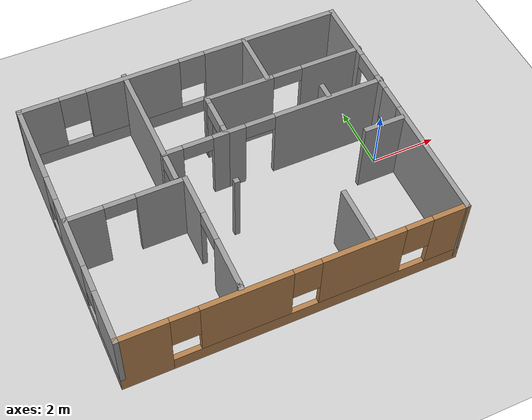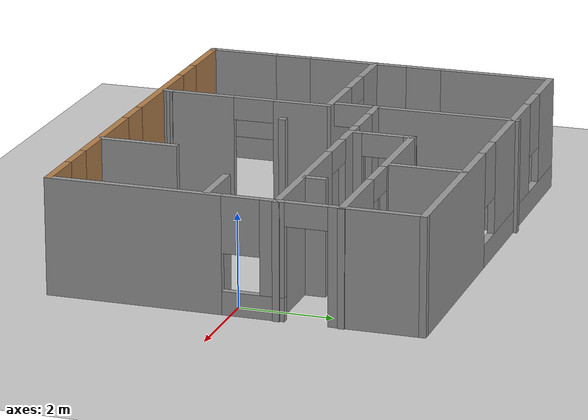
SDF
<?xml version="1.0" ?>
<sdf version="1.5">
  <world name="default">
    <!-- A global light source -->
    <include>
      <uri>model://sun</uri>
    </include>
    <!-- A ground plane -->
    <include>
      <uri>model://ground_plane</uri>
    </include>

    <include>
      <uri>model://basic_building2</uri>
      <pose> -4.5 0.1 0 0 0 0 </pose>
    </include>

    <physics name='default_physics' default='0' type='ode'>
      <gravity>0 0 -9.8066</gravity>
      <ode>
        <solver>
          <type>quick</type>
          <iters>10</iters>
          <sor>1.3</sor>
          <use_dynamic_moi_rescaling>0</use_dynamic_moi_rescaling>
        </solver>
        <constraints>
          <cfm>0</cfm>
          <erp>0.2</erp>
          <contact_max_correcting_vel>100</contact_max_correcting_vel>
          <contact_surface_layer>0.001</contact_surface_layer>
        </constraints>
      </ode>
      <max_step_size>0.004</max_step_size>
      <real_time_factor>1</real_time_factor>
      <real_time_update_rate>250</real_time_update_rate>
      <magnetic_field>6.0e-6 2.3e-5 -4.2e-5</magnetic_field>
    </physics>
  </world>
</sdf>

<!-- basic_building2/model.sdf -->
<sdf version='1.6'>
  <model name='basicBuilding2'>
    <pose frame=''>-2.70207 -1.92514 0 0 -0 0</pose>
    <link name='Wall_15'>
      <pose frame=''>2.51436 0.86563 0 0 -0 3.14159</pose>
      <visual name='Wall_15_Visual_0'>
        <pose frame=''>-0.781179 0 1.25 0 -0 0</pose>
        <geometry>
          <box>
            <size>3.43764 0.15 2.5</size>
          </box>
        </geometry>
        <material>
          <script>
            <uri>file://media/materials/scripts/gazebo.material</uri>
            <name>Gazebo/Grey</name>
          </script>
          <ambient>1 1 1 1</ambient>
        </material>
        <meta>
          <layer>0</layer>
        </meta>
      </visual>
      <collision name='Wall_15_Collision_0'>
        <geometry>
          <box>
            <size>3.43764 0.15 2.5</size>
          </box>
        </geometry>
        <pose frame=''>-0.781179 0 1.25 0 -0 0</pose>
      </collision>
      <visual name='Wall_15_Visual_1'>
        <pose frame=''>2.16882 0 1.25 0 -0 0</pose>
        <geometry>
          <box>
            <size>0.662358 0.15 2.5</size>
          </box>
        </geometry>
        <material>
          <script>
            <uri>file://media/materials/scripts/gazebo.material</uri>
            <name>Gazebo/Grey</name>
          </script>
          <ambient>1 1 1 1</ambient>
        </material>
        <meta>
          <layer>0</layer>
        </meta>
      </visual>
      <collision name='Wall_15_Collision_1'>
        <geometry>
          <box>
            <size>0.662358 0.15 2.5</size>
          </box>
        </geometry>
        <pose frame=''>2.16882 0 1.25 0 -0 0</pose>
      </collision>
      <visual name='Wall_15_Visual_2'>
        <pose frame=''>1.38764 0 2.25 0 -0 0</pose>
        <geometry>
          <box>
            <size>0.9 0.15 0.5</size>
          </box>
        </geometry>
        <material>
          <script>
            <uri>file://media/materials/scripts/gazebo.material</uri>
            <name>Gazebo/Grey</name>
          </script>
          <ambient>1 1 1 1</ambient>
        </material>
        <meta>
          <layer>0</layer>
        </meta>
      </visual>
      <collision name='Wall_15_Collision_2'>
        <geometry>
          <box>
            <size>0.9 0.15 0.5</size>
          </box>
        </geometry>
        <pose frame=''>1.38764 0 2.25 0 -0 0</pose>
      </collision>
    </link>
    <link name='Wall_17'>
      <pose frame=''>0.089363 1.54063 0 0 -0 1.5708</pose>
      <visual name='Wall_17_Visual_0'>
        <pose frame=''>-0.578397 0 1.25 0 -0 0</pose>
        <geometry>
          <box>
            <size>0.343206 0.15 2.5</size>
          </box>
        </geometry>
        <material>
          <script>
            <uri>file://media/materials/scripts/gazebo.material</uri>
            <name>Gazebo/Grey</name>
          </script>
          <ambient>1 1 1 1</ambient>
        </material>
        <meta>
          <layer>0</layer>
        </meta>
      </visual>
      <collision name='Wall_17_Collision_0'>
        <geometry>
          <box>
            <size>0.343206 0.15 2.5</size>
          </box>
        </geometry>
        <pose frame=''>-0.578397 0 1.25 0 -0 0</pose>
      </collision>
      <visual name='Wall_17_Visual_1'>
        <pose frame=''>0.621603 0 1.25 0 -0 0</pose>
        <geometry>
          <box>
            <size>0.256794 0.15 2.5</size>
          </box>
        </geometry>
        <material>
          <script>
            <uri>file://media/materials/scripts/gazebo.material</uri>
            <name>Gazebo/Grey</name>
          </script>
          <ambient>1 1 1 1</ambient>
        </material>
        <meta>
          <layer>0</layer>
        </meta>
      </visual>
      <collision name='Wall_17_Collision_1'>
        <geometry>
          <box>
            <size>0.256794 0.15 2.5</size>
          </box>
        </geometry>
        <pose frame=''>0.621603 0 1.25 0 -0 0</pose>
      </collision>
      <visual name='Wall_17_Visual_2'>
        <pose frame=''>0.043206 0 2.25 0 -0 0</pose>
        <geometry>
          <box>
            <size>0.9 0.15 0.5</size>
          </box>
        </geometry>
        <material>
          <script>
            <uri>file://media/materials/scripts/gazebo.material</uri>
            <name>Gazebo/Grey</name>
          </script>
          <ambient>1 1 1 1</ambient>
        </material>
        <meta>
          <layer>0</layer>
        </meta>
      </visual>
      <collision name='Wall_17_Collision_2'>
        <geometry>
          <box>
            <size>0.9 0.15 0.5</size>
          </box>
        </geometry>
        <pose frame=''>0.043206 0 2.25 0 -0 0</pose>
      </collision>
    </link>
    <link name='Wall_18'>
      <pose frame=''>2.51436 2.21563 0 0 -0 0</pose>
      <visual name='Wall_18_Visual_0'>
        <pose frame=''>-1.42462 0 1.25 0 -0 0</pose>
        <geometry>
          <box>
            <size>2.15076 0.15 2.5</size>
          </box>
        </geometry>
        <material>
          <script>
            <uri>file://media/materials/scripts/gazebo.material</uri>
            <name>Gazebo/Grey</name>
          </script>
          <ambient>1 1 1 1</ambient>
        </material>
        <meta>
          <layer>0</layer>
        </meta>
      </visual>
      <collision name='Wall_18_Collision_0'>
        <geometry>
          <box>
            <size>2.15076 0.15 2.5</size>
          </box>
        </geometry>
        <pose frame=''>-1.42462 0 1.25 0 -0 0</pose>
      </collision>
      <visual name='Wall_18_Visual_1'>
        <pose frame=''>1.52538 0 1.25 0 -0 0</pose>
        <geometry>
          <box>
            <size>1.94924 0.15 2.5</size>
          </box>
        </geometry>
        <material>
          <script>
            <uri>file://media/materials/scripts/gazebo.material</uri>
            <name>Gazebo/Grey</name>
          </script>
          <ambient>1 1 1 1</ambient>
        </material>
        <meta>
          <layer>0</layer>
        </meta>
      </visual>
      <collision name='Wall_18_Collision_1'>
        <geometry>
          <box>
            <size>1.94924 0.15 2.5</size>
          </box>
        </geometry>
        <pose frame=''>1.52538 0 1.25 0 -0 0</pose>
      </collision>
      <visual name='Wall_18_Visual_2'>
        <pose frame=''>0.100763 0 2.25 0 -0 0</pose>
        <geometry>
          <box>
            <size>0.9 0.15 0.5</size>
          </box>
        </geometry>
        <material>
          <script>
            <uri>file://media/materials/scripts/gazebo.material</uri>
            <name>Gazebo/Grey</name>
          </script>
          <ambient>1 1 1 1</ambient>
        </material>
        <meta>
          <layer>0</layer>
        </meta>
      </visual>
      <collision name='Wall_18_Collision_2'>
        <geometry>
          <box>
            <size>0.9 0.15 0.5</size>
          </box>
        </geometry>
        <pose frame=''>0.100763 0 2.25 0 -0 0</pose>
      </collision>
    </link>
    <link name='Wall_22'>
      <collision name='Wall_22_Collision'>
        <geometry>
          <box>
            <size>1.75 0.15 2.5</size>
          </box>
        </geometry>
        <pose frame=''>0 0 1.25 0 -0 0</pose>
      </collision>
      <visual name='Wall_22_Visual'>
        <pose frame=''>0 0 1.25 0 -0 0</pose>
        <geometry>
          <box>
            <size>1.75 0.15 2.5</size>
          </box>
        </geometry>
        <material>
          <script>
            <uri>file://media/materials/scripts/gazebo.material</uri>
            <name>Gazebo/Grey</name>
          </script>
          <ambient>1 1 1 1</ambient>
        </material>
        <meta>
          <layer>0</layer>
        </meta>
      </visual>
      <pose frame=''>1.98636 3.06054 0 0 -0 1.5708</pose>
    </link>
    <link name='Wall_24'>
      <collision name='Wall_24_Collision'>
        <geometry>
          <box>
            <size>0.5 0.15 2.5</size>
          </box>
        </geometry>
        <pose frame=''>0 0 1.25 0 -0 0</pose>
      </collision>
      <visual name='Wall_24_Visual'>
        <pose frame=''>0 0 1.25 0 -0 0</pose>
        <geometry>
          <box>
            <size>0.5 0.15 2.5</size>
          </box>
        </geometry>
        <material>
          <script>
            <uri>file://media/materials/scripts/gazebo.material</uri>
            <name>Gazebo/Grey</name>
          </script>
          <ambient>1 1 1 1</ambient>
        </material>
        <meta>
          <layer>0</layer>
        </meta>
      </visual>
      <pose frame=''>3.29899 1.12725 0 0 -0 -1.5708</pose>
    </link>
    <link name='Wall_28'>
      <pose frame=''>-0.835637 0.86563 0 0 -0 3.14159</pose>
      <visual name='Wall_28_Visual_0'>
        <pose frame=''>-0.761234 0 1.25 0 -0 0</pose>
        <geometry>
          <box>
            <size>0.477531 0.15 2.5</size>
          </box>
        </geometry>
        <material>
          <script>
            <uri>file://media/materials/scripts/gazebo.material</uri>
            <name>Gazebo/Grey</name>
          </script>
          <ambient>1 1 1 1</ambient>
        </material>
        <meta>
          <layer>0</layer>
        </meta>
      </visual>
      <collision name='Wall_28_Collision_0'>
        <geometry>
          <box>
            <size>0.477531 0.15 2.5</size>
          </box>
        </geometry>
        <pose frame=''>-0.761234 0 1.25 0 -0 0</pose>
      </collision>
      <visual name='Wall_28_Visual_1'>
        <pose frame=''>0.688766 0 1.25 0 -0 0</pose>
        <geometry>
          <box>
            <size>0.622469 0.15 2.5</size>
          </box>
        </geometry>
        <material>
          <script>
            <uri>file://media/materials/scripts/gazebo.material</uri>
            <name>Gazebo/Grey</name>
          </script>
          <ambient>1 1 1 1</ambient>
        </material>
        <meta>
          <layer>0</layer>
        </meta>
      </visual>
      <collision name='Wall_28_Collision_1'>
        <geometry>
          <box>
            <size>0.622469 0.15 2.5</size>
          </box>
        </geometry>
        <pose frame=''>0.688766 0 1.25 0 -0 0</pose>
      </collision>
      <visual name='Wall_28_Visual_2'>
        <pose frame=''>-0.072469 0 2.25 0 -0 0</pose>
        <geometry>
          <box>
            <size>0.9 0.15 0.5</size>
          </box>
        </geometry>
        <material>
          <script>
            <uri>file://media/materials/scripts/gazebo.material</uri>
            <name>Gazebo/Grey</name>
          </script>
          <ambient>1 1 1 1</ambient>
        </material>
        <meta>
          <layer>0</layer>
        </meta>
      </visual>
      <collision name='Wall_28_Collision_2'>
        <geometry>
          <box>
            <size>0.9 0.15 0.5</size>
          </box>
        </geometry>
        <pose frame=''>-0.072469 0 2.25 0 -0 0</pose>
      </collision>
    </link>
    <link name='Wall_30'>
      <collision name='Wall_30_Collision'>
        <geometry>
          <box>
            <size>3.25 0.15 2.5</size>
          </box>
        </geometry>
        <pose frame=''>0 0 1.25 0 -0 0</pose>
      </collision>
      <visual name='Wall_30_Visual'>
        <pose frame=''>0 0 1.25 0 -0 0</pose>
        <geometry>
          <box>
            <size>3.25 0.15 2.5</size>
          </box>
        </geometry>
        <material>
          <script>
            <uri>file://media/materials/scripts/gazebo.material</uri>
            <name>Gazebo/Grey</name>
          </script>
          <ambient>1 1 1 1</ambient>
        </material>
        <meta>
          <layer>0</layer>
        </meta>
      </visual>
      <pose frame=''>-1.76064 2.41563 0 0 -0 1.5708</pose>
    </link>
    <link name='Wall_32'>
      <pose frame=''>-3.22504 -0.143869 0 0 -0 -0.001293</pose>
      <visual name='Wall_32_Visual_0'>
        <pose frame=''>-1.20035 0 1.25 0 -0 0</pose>
        <geometry>
          <box>
            <size>1.11235 0.15 2.5</size>
          </box>
        </geometry>
        <material>
          <script>
            <uri>file://media/materials/scripts/gazebo.material</uri>
            <name>Gazebo/Grey</name>
          </script>
          <ambient>1 1 1 1</ambient>
        </material>
        <meta>
          <layer>0</layer>
        </meta>
      </visual>
      <collision name='Wall_32_Collision_0'>
        <geometry>
          <box>
            <size>1.11235 0.15 2.5</size>
          </box>
        </geometry>
        <pose frame=''>-1.20035 0 1.25 0 -0 0</pose>
      </collision>
      <visual name='Wall_32_Visual_1'>
        <pose frame=''>1.00618 0 1.25 0 -0 0</pose>
        <geometry>
          <box>
            <size>1.50069 0.15 2.5</size>
          </box>
        </geometry>
        <material>
          <script>
            <uri>file://media/materials/scripts/gazebo.material</uri>
            <name>Gazebo/Grey</name>
          </script>
          <ambient>1 1 1 1</ambient>
        </material>
        <meta>
          <layer>0</layer>
        </meta>
      </visual>
      <collision name='Wall_32_Collision_1'>
        <geometry>
          <box>
            <size>1.50069 0.15 2.5</size>
          </box>
        </geometry>
        <pose frame=''>1.00618 0 1.25 0 -0 0</pose>
      </collision>
      <visual name='Wall_32_Visual_2'>
        <pose frame=''>-0.19417 0 2.25 0 -0 0</pose>
        <geometry>
          <box>
            <size>0.9 0.15 0.5</size>
          </box>
        </geometry>
        <material>
          <script>
            <uri>file://media/materials/scripts/gazebo.material</uri>
            <name>Gazebo/Grey</name>
          </script>
          <ambient>1 1 1 1</ambient>
        </material>
        <meta>
          <layer>0</layer>
        </meta>
      </visual>
      <collision name='Wall_32_Collision_2'>
        <geometry>
          <box>
            <size>0.9 0.15 0.5</size>
          </box>
        </geometry>
        <pose frame=''>-0.19417 0 2.25 0 -0 0</pose>
      </collision>
    </link>
    <link name='Wall_33'>
      <pose frame=''>-1.54352 -1.95039 0 0 -0 -1.5708</pose>
      <visual name='Wall_33_Visual_0'>
        <pose frame=''>-1.22774 0 1.25 0 -0 0</pose>
        <geometry>
          <box>
            <size>1.29453 0.15 2.5</size>
          </box>
        </geometry>
        <material>
          <script>
            <uri>file://media/materials/scripts/gazebo.material</uri>
            <name>Gazebo/Grey</name>
          </script>
          <ambient>1 1 1 1</ambient>
        </material>
        <meta>
          <layer>0</layer>
        </meta>
      </visual>
      <collision name='Wall_33_Collision_0'>
        <geometry>
          <box>
            <size>1.29453 0.15 2.5</size>
          </box>
        </geometry>
        <pose frame=''>-1.22774 0 1.25 0 -0 0</pose>
      </collision>
      <visual name='Wall_33_Visual_1'>
        <pose frame=''>1.09726 0 1.25 0 -0 0</pose>
        <geometry>
          <box>
            <size>1.55547 0.15 2.5</size>
          </box>
        </geometry>
        <material>
          <script>
            <uri>file://media/materials/scripts/gazebo.material</uri>
            <name>Gazebo/Grey</name>
          </script>
          <ambient>1 1 1 1</ambient>
        </material>
        <meta>
          <layer>0</layer>
        </meta>
      </visual>
      <collision name='Wall_33_Collision_1'>
        <geometry>
          <box>
            <size>1.55547 0.15 2.5</size>
          </box>
        </geometry>
        <pose frame=''>1.09726 0 1.25 0 -0 0</pose>
      </collision>
      <visual name='Wall_33_Visual_2'>
        <pose frame=''>-0.130473 0 2.25 0 -0 0</pose>
        <geometry>
          <box>
            <size>0.9 0.15 0.5</size>
          </box>
        </geometry>
        <material>
          <script>
            <uri>file://media/materials/scripts/gazebo.material</uri>
            <name>Gazebo/Grey</name>
          </script>
          <ambient>1 1 1 1</ambient>
        </material>
        <meta>
          <layer>0</layer>
        </meta>
      </visual>
      <collision name='Wall_33_Collision_2'>
        <geometry>
          <box>
            <size>0.9 0.15 0.5</size>
          </box>
        </geometry>
        <pose frame=''>-0.130473 0 2.25 0 -0 0</pose>
      </collision>
    </link>
    <link name='Wall_34'>
      <collision name='Wall_34_Collision'>
        <geometry>
          <box>
            <size>0.246537 0.15 2.5</size>
          </box>
        </geometry>
        <pose frame=''>0 0 1.25 0 -0 0</pose>
      </collision>
      <visual name='Wall_34_Visual'>
        <pose frame=''>0 0 1.25 0 -0 0</pose>
        <geometry>
          <box>
            <size>0.246537 0.15 2.5</size>
          </box>
        </geometry>
        <material>
          <script>
            <uri>file://media/materials/scripts/gazebo.material</uri>
            <name>Gazebo/Grey</name>
          </script>
          <ambient>1 1 1 1</ambient>
        </material>
        <meta>
          <layer>0</layer>
        </meta>
      </visual>
      <pose frame=''>-1.55004 -3.79387 0 0 -0 -1.70632</pose>
    </link>
    <link name='Wall_37'>
      <pose frame=''>-1.76064 0.44063 0 0 -0 -1.5708</pose>
      <visual name='Wall_37_Visual_0'>
        <pose frame=''>-0.4158 0 1.25 0 -0 0</pose>
        <geometry>
          <box>
            <size>0.168399 0.15 2.5</size>
          </box>
        </geometry>
        <material>
          <script>
            <uri>file://media/materials/scripts/gazebo.material</uri>
            <name>Gazebo/Grey</name>
          </script>
          <ambient>1 1 1 1</ambient>
        </material>
        <meta>
          <layer>0</layer>
        </meta>
      </visual>
      <collision name='Wall_37_Collision_0'>
        <geometry>
          <box>
            <size>0.168399 0.15 2.5</size>
          </box>
        </geometry>
        <pose frame=''>-0.4158 0 1.25 0 -0 0</pose>
      </collision>
      <visual name='Wall_37_Visual_1'>
        <pose frame=''>0.0842 0 2.25 0 -0 0</pose>
        <geometry>
          <box>
            <size>0.831601 0.15 0.5</size>
          </box>
        </geometry>
        <material>
          <script>
            <uri>file://media/materials/scripts/gazebo.material</uri>
            <name>Gazebo/Grey</name>
          </script>
          <ambient>1 1 1 1</ambient>
        </material>
        <meta>
          <layer>0</layer>
        </meta>
      </visual>
      <collision name='Wall_37_Collision_1'>
        <geometry>
          <box>
            <size>0.831601 0.15 0.5</size>
          </box>
        </geometry>
        <pose frame=''>0.0842 0 2.25 0 -0 0</pose>
      </collision>
    </link>
    <link name='Wall_4'>
      <pose frame=''>-0.014363 -3.96563 0 0 -0 0</pose>
      <visual name='Wall_4_Visual_0'>
        <pose frame=''>-4.26295 0 1.25 0 -0 0</pose>
        <geometry>
          <box>
            <size>1.47409 0.15 2.5</size>
          </box>
        </geometry>
        <material>
          <script>
            <uri>file://media/materials/scripts/gazebo.material</uri>
            <name>Gazebo/Wood</name>
          </script>
          <ambient>0.760784 0.662745 0.627451 1</ambient>
        </material>
        <meta>
          <layer>0</layer>
        </meta>
      </visual>
      <collision name='Wall_4_Collision_0'>
        <geometry>
          <box>
            <size>1.47409 0.15 2.5</size>
          </box>
        </geometry>
        <pose frame=''>-4.26295 0 1.25 0 -0 0</pose>
      </collision>
      <visual name='Wall_4_Visual_1'>
        <pose frame=''>0.737045 0 0.25 0 -0 0</pose>
        <geometry>
          <box>
            <size>8.52591 0.15 0.5</size>
          </box>
        </geometry>
        <material>
          <script>
            <uri>file://media/materials/scripts/gazebo.material</uri>
            <name>Gazebo/Wood</name>
          </script>
          <ambient>0.760784 0.662745 0.627451 1</ambient>
        </material>
        <meta>
          <layer>0</layer>
        </meta>
      </visual>
      <collision name='Wall_4_Collision_1'>
        <geometry>
          <box>
            <size>8.52591 0.15 0.5</size>
          </box>
        </geometry>
        <pose frame=''>0.737045 0 0.25 0 -0 0</pose>
      </collision>
      <visual name='Wall_4_Visual_2'>
        <pose frame=''>-1.43689 0 1.5 0 -0 0</pose>
        <geometry>
          <box>
            <size>2.57804 0.15 2</size>
          </box>
        </geometry>
        <material>
          <script>
            <uri>file://media/materials/scripts/gazebo.material</uri>
            <name>Gazebo/Wood</name>
          </script>
          <ambient>0.760784 0.662745 0.627451 1</ambient>
        </material>
        <meta>
          <layer>0</layer>
        </meta>
      </visual>
      <collision name='Wall_4_Collision_2'>
        <geometry>
          <box>
            <size>2.57804 0.15 2</size>
          </box>
        </geometry>
        <pose frame=''>-1.43689 0 1.5 0 -0 0</pose>
      </collision>
      <visual name='Wall_4_Visual_3'>
        <pose frame=''>1.87035 0 1.5 0 -0 0</pose>
        <geometry>
          <box>
            <size>2.43645 0.15 2</size>
          </box>
        </geometry>
        <material>
          <script>
            <uri>file://media/materials/scripts/gazebo.material</uri>
            <name>Gazebo/Wood</name>
          </script>
          <ambient>0.760784 0.662745 0.627451 1</ambient>
        </material>
        <meta>
          <layer>0</layer>
        </meta>
      </visual>
      <collision name='Wall_4_Collision_3'>
        <geometry>
          <box>
            <size>2.43645 0.15 2</size>
          </box>
        </geometry>
        <pose frame=''>1.87035 0 1.5 0 -0 0</pose>
      </collision>
      <visual name='Wall_4_Visual_4'>
        <pose frame=''>4.44429 0 1.5 0 -0 0</pose>
        <geometry>
          <box>
            <size>1.11142 0.15 2</size>
          </box>
        </geometry>
        <material>
          <script>
            <uri>file://media/materials/scripts/gazebo.material</uri>
            <name>Gazebo/Wood</name>
          </script>
          <ambient>0.760784 0.662745 0.627451 1</ambient>
        </material>
        <meta>
          <layer>0</layer>
        </meta>
      </visual>
      <collision name='Wall_4_Collision_4'>
        <geometry>
          <box>
            <size>1.11142 0.15 2</size>
          </box>
        </geometry>
        <pose frame=''>4.44429 0 1.5 0 -0 0</pose>
      </collision>
      <visual name='Wall_4_Visual_5'>
        <pose frame=''>-3.12591 0 1.9 0 -0 0</pose>
        <geometry>
          <box>
            <size>0.8 0.15 1.2</size>
          </box>
        </geometry>
        <material>
          <script>
            <uri>file://media/materials/scripts/gazebo.material</uri>
            <name>Gazebo/Wood</name>
          </script>
          <ambient>0.760784 0.662745 0.627451 1</ambient>
        </material>
        <meta>
          <layer>0</layer>
        </meta>
      </visual>
      <collision name='Wall_4_Collision_5'>
        <geometry>
          <box>
            <size>0.8 0.15 1.2</size>
          </box>
        </geometry>
        <pose frame=''>-3.12591 0 1.9 0 -0 0</pose>
      </collision>
      <visual name='Wall_4_Visual_6'>
        <pose frame=''>0.252132 0 1.9 0 -0 0</pose>
        <geometry>
          <box>
            <size>0.8 0.15 1.2</size>
          </box>
        </geometry>
        <material>
          <script>
            <uri>file://media/materials/scripts/gazebo.material</uri>
            <name>Gazebo/Wood</name>
          </script>
          <ambient>0.760784 0.662745 0.627451 1</ambient>
        </material>
        <meta>
          <layer>0</layer>
        </meta>
      </visual>
      <collision name='Wall_4_Collision_6'>
        <geometry>
          <box>
            <size>0.8 0.15 1.2</size>
          </box>
        </geometry>
        <pose frame=''>0.252132 0 1.9 0 -0 0</pose>
      </collision>
      <visual name='Wall_4_Visual_7'>
        <pose frame=''>3.48858 0 1.9 0 -0 0</pose>
        <geometry>
          <box>
            <size>0.8 0.15 1.2</size>
          </box>
        </geometry>
        <material>
          <script>
            <uri>file://media/materials/scripts/gazebo.material</uri>
            <name>Gazebo/Wood</name>
          </script>
          <ambient>0.760784 0.662745 0.627451 1</ambient>
        </material>
        <meta>
          <layer>0</layer>
        </meta>
      </visual>
      <collision name='Wall_4_Collision_7'>
        <geometry>
          <box>
            <size>0.8 0.15 1.2</size>
          </box>
        </geometry>
        <pose frame=''>3.48858 0 1.9 0 -0 0</pose>
      </collision>
    </link>
    <link name='Wall_42'>
      <collision name='Wall_42_Collision'>
        <geometry>
          <box>
            <size>1.75 0.15 2.5</size>
          </box>
        </geometry>
        <pose frame=''>0 0 1.25 0 -0 0</pose>
      </collision>
      <visual name='Wall_42_Visual'>
        <pose frame=''>0 0 1.25 0 -0 0</pose>
        <geometry>
          <box>
            <size>1.75 0.15 2.5</size>
          </box>
        </geometry>
        <material>
          <script>
            <uri>file://media/materials/scripts/gazebo.material</uri>
            <name>Gazebo/Grey</name>
          </script>
          <ambient>1 1 1 1</ambient>
        </material>
        <meta>
          <layer>0</layer>
        </meta>
      </visual>
      <pose frame=''>2.13918 -3.10338 0 0 -0 1.5708</pose>
    </link>
    <link name='Wall_44'>
      <collision name='Wall_44_Collision'>
        <geometry>
          <box>
            <size>1.25 0.15 2.5</size>
          </box>
        </geometry>
        <pose frame=''>0 0 1.25 0 -0 0</pose>
      </collision>
      <visual name='Wall_44_Visual'>
        <pose frame=''>0 0 1.25 0 -0 0</pose>
        <geometry>
          <box>
            <size>1.25 0.15 2.5</size>
          </box>
        </geometry>
        <material>
          <script>
            <uri>file://media/materials/scripts/gazebo.material</uri>
            <name>Gazebo/Grey</name>
          </script>
          <ambient>1 1 1 1</ambient>
        </material>
        <meta>
          <layer>0</layer>
        </meta>
      </visual>
      <pose frame=''>4.25925 -0.626478 0 0 -0 3.14159</pose>
    </link>
    <link name='Wall_48'>
      <collision name='Wall_48_Collision'>
        <geometry>
          <box>
            <size>0.16 0.15 2.5</size>
          </box>
        </geometry>
        <pose frame=''>0 0 1.25 0 -0 0</pose>
      </collision>
      <visual name='Wall_48_Visual'>
        <pose frame=''>0 0 1.25 0 -0 0</pose>
        <geometry>
          <box>
            <size>0.16 0.15 2.5</size>
          </box>
        </geometry>
        <material>
          <script>
            <uri>file://media/materials/scripts/gazebo.material</uri>
            <name>Gazebo/Grey</name>
          </script>
          <ambient>1 1 1 1</ambient>
        </material>
        <meta>
          <layer>0</layer>
        </meta>
      </visual>
      <pose frame=''>-0.317448 -0.763685 0 0 -0 0</pose>
    </link>
    <link name='Wall_5'>
      <pose frame=''>4.91064 -0.04063 0 0 -0 1.5708</pose>
      <visual name='Wall_5_Visual_0'>
        <pose frame=''>-2.11871 0 1.25 0 -0 0</pose>
        <geometry>
          <box>
            <size>3.76258 0.15 2.5</size>
          </box>
        </geometry>
        <material>
          <script>
            <uri>file://media/materials/scripts/gazebo.material</uri>
            <name>Gazebo/Grey</name>
          </script>
          <ambient>1 1 1 1</ambient>
        </material>
        <meta>
          <layer>0</layer>
        </meta>
      </visual>
      <collision name='Wall_5_Collision_0'>
        <geometry>
          <box>
            <size>3.76258 0.15 2.5</size>
          </box>
        </geometry>
        <pose frame=''>-2.11871 0 1.25 0 -0 0</pose>
      </collision>
      <visual name='Wall_5_Visual_1'>
        <pose frame=''>2.98925 0 1.25 0 -0 0</pose>
        <geometry>
          <box>
            <size>2.0215 0.15 2.5</size>
          </box>
        </geometry>
        <material>
          <script>
            <uri>file://media/materials/scripts/gazebo.material</uri>
            <name>Gazebo/Grey</name>
          </script>
          <ambient>1 1 1 1</ambient>
        </material>
        <meta>
          <layer>0</layer>
        </meta>
      </visual>
      <collision name='Wall_5_Collision_1'>
        <geometry>
          <box>
            <size>2.0215 0.15 2.5</size>
          </box>
        </geometry>
        <pose frame=''>2.98925 0 1.25 0 -0 0</pose>
      </collision>
      <visual name='Wall_5_Visual_2'>
        <pose frame=''>0.420539 0 0.25 0 -0 0</pose>
        <geometry>
          <box>
            <size>1.31592 0.15 0.5</size>
          </box>
        </geometry>
        <material>
          <script>
            <uri>file://media/materials/scripts/gazebo.material</uri>
            <name>Gazebo/Grey</name>
          </script>
          <ambient>1 1 1 1</ambient>
        </material>
        <meta>
          <layer>0</layer>
        </meta>
      </visual>
      <collision name='Wall_5_Collision_2'>
        <geometry>
          <box>
            <size>1.31592 0.15 0.5</size>
          </box>
        </geometry>
        <pose frame=''>0.420539 0 0.25 0 -0 0</pose>
      </collision>
      <visual name='Wall_5_Visual_3'>
        <pose frame=''>0.820539 0 1.5 0 -0 0</pose>
        <geometry>
          <box>
            <size>0.515919 0.15 2</size>
          </box>
        </geometry>
        <material>
          <script>
            <uri>file://media/materials/scripts/gazebo.material</uri>
            <name>Gazebo/Grey</name>
          </script>
          <ambient>1 1 1 1</ambient>
        </material>
        <meta>
          <layer>0</layer>
        </meta>
      </visual>
      <collision name='Wall_5_Collision_3'>
        <geometry>
          <box>
            <size>0.515919 0.15 2</size>
          </box>
        </geometry>
        <pose frame=''>0.820539 0 1.5 0 -0 0</pose>
      </collision>
      <visual name='Wall_5_Visual_4'>
        <pose frame=''>0.16258 0 1.9 0 -0 0</pose>
        <geometry>
          <box>
            <size>0.8 0.15 1.2</size>
          </box>
        </geometry>
        <material>
          <script>
            <uri>file://media/materials/scripts/gazebo.material</uri>
            <name>Gazebo/Grey</name>
          </script>
          <ambient>1 1 1 1</ambient>
        </material>
        <meta>
          <layer>0</layer>
        </meta>
      </visual>
      <collision name='Wall_5_Collision_4'>
        <geometry>
          <box>
            <size>0.8 0.15 1.2</size>
          </box>
        </geometry>
        <pose frame=''>0.16258 0 1.9 0 -0 0</pose>
      </collision>
      <visual name='Wall_5_Visual_5'>
        <pose frame=''>1.5285 0 2.25 0 -0 0</pose>
        <geometry>
          <box>
            <size>0.9 0.15 0.5</size>
          </box>
        </geometry>
        <material>
          <script>
            <uri>file://media/materials/scripts/gazebo.material</uri>
            <name>Gazebo/Grey</name>
          </script>
          <ambient>1 1 1 1</ambient>
        </material>
        <meta>
          <layer>0</layer>
        </meta>
      </visual>
      <collision name='Wall_5_Collision_5'>
        <geometry>
          <box>
            <size>0.9 0.15 0.5</size>
          </box>
        </geometry>
        <pose frame=''>1.5285 0 2.25 0 -0 0</pose>
      </collision>
    </link>
    <link name='Wall_6'>
      <pose frame=''>-0.014363 3.88437 0 0 -0 3.14159</pose>
      <visual name='Wall_6_Visual_0'>
        <pose frame=''>-2.85641 0 1.25 0 -0 0</pose>
        <geometry>
          <box>
            <size>4.28719 0.15 2.5</size>
          </box>
        </geometry>
        <material>
          <script>
            <uri>file://media/materials/scripts/gazebo.material</uri>
            <name>Gazebo/Grey</name>
          </script>
          <ambient>1 1 1 1</ambient>
        </material>
        <meta>
          <layer>0</layer>
        </meta>
      </visual>
      <collision name='Wall_6_Collision_0'>
        <geometry>
          <box>
            <size>4.28719 0.15 2.5</size>
          </box>
        </geometry>
        <pose frame=''>-2.85641 0 1.25 0 -0 0</pose>
      </collision>
      <visual name='Wall_6_Visual_1'>
        <pose frame=''>2.14359 0 0.25 0 -0 0</pose>
        <geometry>
          <box>
            <size>5.71281 0.15 0.5</size>
          </box>
        </geometry>
        <material>
          <script>
            <uri>file://media/materials/scripts/gazebo.material</uri>
            <name>Gazebo/Grey</name>
          </script>
          <ambient>1 1 1 1</ambient>
        </material>
        <meta>
          <layer>0</layer>
        </meta>
      </visual>
      <collision name='Wall_6_Collision_1'>
        <geometry>
          <box>
            <size>5.71281 0.15 0.5</size>
          </box>
        </geometry>
        <pose frame=''>2.14359 0 0.25 0 -0 0</pose>
      </collision>
      <visual name='Wall_6_Visual_2'>
        <pose frame=''>1.5178 0 1.5 0 -0 0</pose>
        <geometry>
          <box>
            <size>2.86123 0.15 2</size>
          </box>
        </geometry>
        <material>
          <script>
            <uri>file://media/materials/scripts/gazebo.material</uri>
            <name>Gazebo/Grey</name>
          </script>
          <ambient>1 1 1 1</ambient>
        </material>
        <meta>
          <layer>0</layer>
        </meta>
      </visual>
      <collision name='Wall_6_Collision_2'>
        <geometry>
          <box>
            <size>2.86123 0.15 2</size>
          </box>
        </geometry>
        <pose frame=''>1.5178 0 1.5 0 -0 0</pose>
      </collision>
      <visual name='Wall_6_Visual_3'>
        <pose frame=''>4.37421 0 1.5 0 -0 0</pose>
        <geometry>
          <box>
            <size>1.25158 0.15 2</size>
          </box>
        </geometry>
        <material>
          <script>
            <uri>file://media/materials/scripts/gazebo.material</uri>
            <name>Gazebo/Grey</name>
          </script>
          <ambient>1 1 1 1</ambient>
        </material>
        <meta>
          <layer>0</layer>
        </meta>
      </visual>
      <collision name='Wall_6_Collision_3'>
        <geometry>
          <box>
            <size>1.25158 0.15 2</size>
          </box>
        </geometry>
        <pose frame=''>4.37421 0 1.5 0 -0 0</pose>
      </collision>
      <visual name='Wall_6_Visual_4'>
        <pose frame=''>-0.312815 0 1.9 0 -0 0</pose>
        <geometry>
          <box>
            <size>0.8 0.15 1.2</size>
          </box>
        </geometry>
        <material>
          <script>
            <uri>file://media/materials/scripts/gazebo.material</uri>
            <name>Gazebo/Grey</name>
          </script>
          <ambient>1 1 1 1</ambient>
        </material>
        <meta>
          <layer>0</layer>
        </meta>
      </visual>
      <collision name='Wall_6_Collision_4'>
        <geometry>
          <box>
            <size>0.8 0.15 1.2</size>
          </box>
        </geometry>
        <pose frame=''>-0.312815 0 1.9 0 -0 0</pose>
      </collision>
      <visual name='Wall_6_Visual_5'>
        <pose frame=''>3.34842 0 1.9 0 -0 0</pose>
        <geometry>
          <box>
            <size>0.8 0.15 1.2</size>
          </box>
        </geometry>
        <material>
          <script>
            <uri>file://media/materials/scripts/gazebo.material</uri>
            <name>Gazebo/Grey</name>
          </script>
          <ambient>1 1 1 1</ambient>
        </material>
        <meta>
          <layer>0</layer>
        </meta>
      </visual>
      <collision name='Wall_6_Collision_5'>
        <geometry>
          <box>
            <size>0.8 0.15 1.2</size>
          </box>
        </geometry>
        <pose frame=''>3.34842 0 1.9 0 -0 0</pose>
      </collision>
    </link>
    <link name='Wall_7'>
      <pose frame=''>-4.93936 -0.04063 0 0 -0 -1.5708</pose>
      <visual name='Wall_7_Visual_0'>
        <pose frame=''>-2.7263 0 1.25 0 -0 0</pose>
        <geometry>
          <box>
            <size>2.5474 0.15 2.5</size>
          </box>
        </geometry>
        <material>
          <script>
            <uri>file://media/materials/scripts/gazebo.material</uri>
            <name>Gazebo/Grey</name>
          </script>
          <ambient>1 1 1 1</ambient>
        </material>
        <meta>
          <layer>0</layer>
        </meta>
      </visual>
      <collision name='Wall_7_Collision_0'>
        <geometry>
          <box>
            <size>2.5474 0.15 2.5</size>
          </box>
        </geometry>
        <pose frame=''>-2.7263 0 1.25 0 -0 0</pose>
      </collision>
      <visual name='Wall_7_Visual_1'>
        <pose frame=''>1.2737 0 0.25 0 -0 0</pose>
        <geometry>
          <box>
            <size>5.4526 0.15 0.5</size>
          </box>
        </geometry>
        <material>
          <script>
            <uri>file://media/materials/scripts/gazebo.material</uri>
            <name>Gazebo/Grey</name>
          </script>
          <ambient>1 1 1 1</ambient>
        </material>
        <meta>
          <layer>0</layer>
        </meta>
      </visual>
      <collision name='Wall_7_Collision_1'>
        <geometry>
          <box>
            <size>5.4526 0.15 0.5</size>
          </box>
        </geometry>
        <pose frame=''>1.2737 0 0.25 0 -0 0</pose>
      </collision>
      <visual name='Wall_7_Visual_2'>
        <pose frame=''>0.474595 0 1.5 0 -0 0</pose>
        <geometry>
          <box>
            <size>2.2544 0.15 2</size>
          </box>
        </geometry>
        <material>
          <script>
            <uri>file://media/materials/scripts/gazebo.material</uri>
            <name>Gazebo/Grey</name>
          </script>
          <ambient>1 1 1 1</ambient>
        </material>
        <meta>
          <layer>0</layer>
        </meta>
      </visual>
      <collision name='Wall_7_Collision_2'>
        <geometry>
          <box>
            <size>2.2544 0.15 2</size>
          </box>
        </geometry>
        <pose frame=''>0.474595 0 1.5 0 -0 0</pose>
      </collision>
      <visual name='Wall_7_Visual_3'>
        <pose frame=''>3.2009 0 1.5 0 -0 0</pose>
        <geometry>
          <box>
            <size>1.59821 0.15 2</size>
          </box>
        </geometry>
        <material>
          <script>
            <uri>file://media/materials/scripts/gazebo.material</uri>
            <name>Gazebo/Grey</name>
          </script>
          <ambient>1 1 1 1</ambient>
        </material>
        <meta>
          <layer>0</layer>
        </meta>
      </visual>
      <collision name='Wall_7_Collision_3'>
        <geometry>
          <box>
            <size>1.59821 0.15 2</size>
          </box>
        </geometry>
        <pose frame=''>3.2009 0 1.5 0 -0 0</pose>
      </collision>
      <visual name='Wall_7_Visual_4'>
        <pose frame=''>-1.0526 0 1.9 0 -0 0</pose>
        <geometry>
          <box>
            <size>0.8 0.15 1.2</size>
          </box>
        </geometry>
        <material>
          <script>
            <uri>file://media/materials/scripts/gazebo.material</uri>
            <name>Gazebo/Grey</name>
          </script>
          <ambient>1 1 1 1</ambient>
        </material>
        <meta>
          <layer>0</layer>
        </meta>
      </visual>
      <collision name='Wall_7_Collision_4'>
        <geometry>
          <box>
            <size>0.8 0.15 1.2</size>
          </box>
        </geometry>
        <pose frame=''>-1.0526 0 1.9 0 -0 0</pose>
      </collision>
      <visual name='Wall_7_Visual_5'>
        <pose frame=''>2.00179 0 1.9 0 -0 0</pose>
        <geometry>
          <box>
            <size>0.8 0.15 1.2</size>
          </box>
        </geometry>
        <material>
          <script>
            <uri>file://media/materials/scripts/gazebo.material</uri>
            <name>Gazebo/Grey</name>
          </script>
          <ambient>1 1 1 1</ambient>
        </material>
        <meta>
          <layer>0</layer>
        </meta>
      </visual>
      <collision name='Wall_7_Collision_5'>
        <geometry>
          <box>
            <size>0.8 0.15 1.2</size>
          </box>
        </geometry>
        <pose frame=''>2.00179 0 1.9 0 -0 0</pose>
      </collision>
    </link>
    <static>1</static>
  </model>
</sdf>
